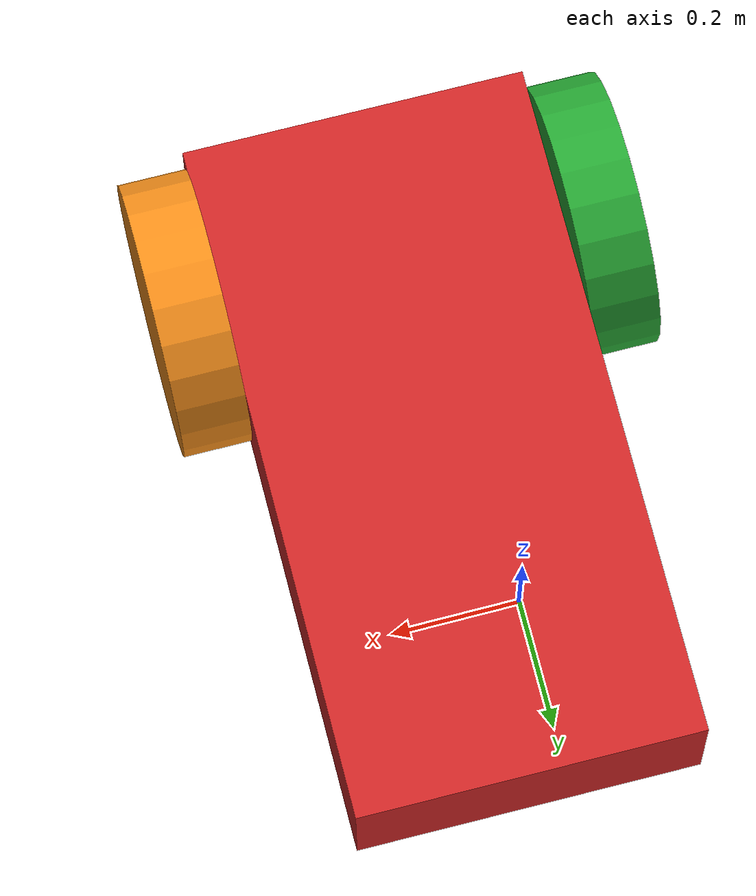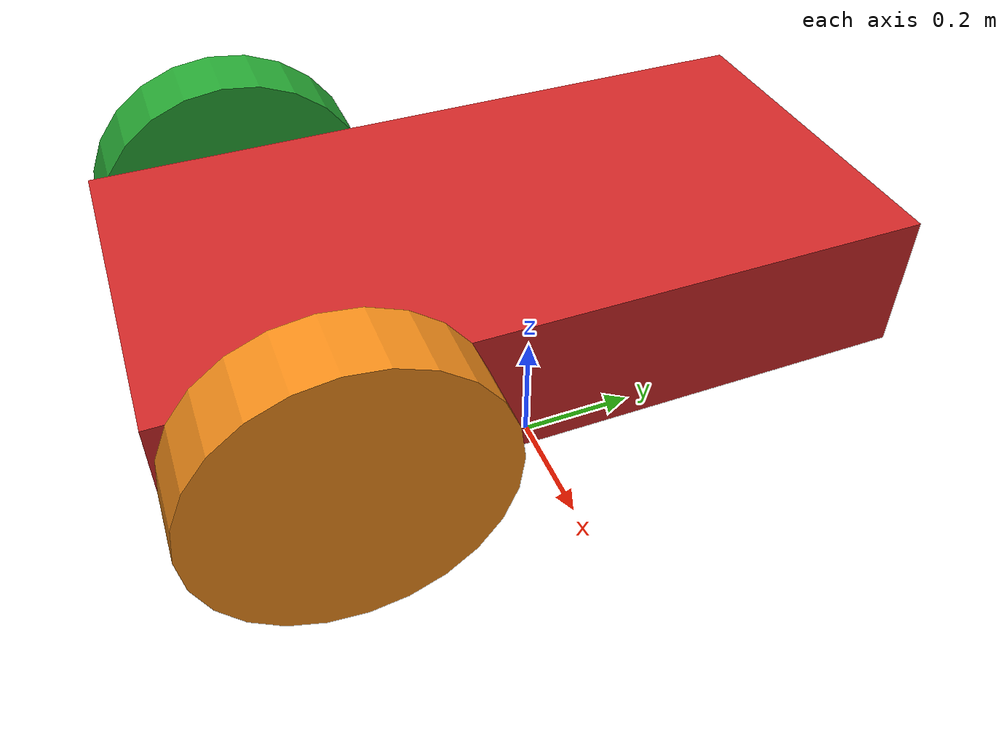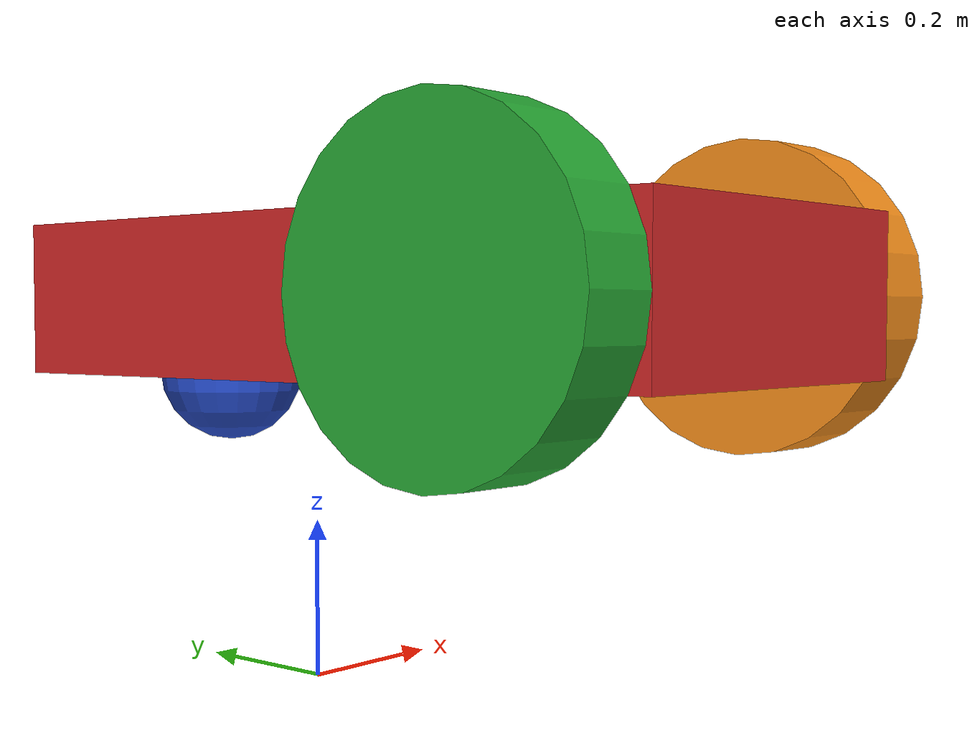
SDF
<?xml version='1.0'?>
<sdf version='1.7'>
  <model name='wagon'>
    <link name='chassis'>
      <inertial>
        <mass>1</mass>
        <inertia>
          <ixx>0.166667</ixx>
          <ixy>0</ixy>
          <ixz>0</ixz>
          <iyy>0.166667</iyy>
          <iyz>0</iyz>
          <izz>0.166667</izz>
        </inertia>
        <pose>0 0 0 0 -0 0</pose>
      </inertial>
      <pose>0.09823 -0.107427 0.483928 0 -0 0</pose>
      <gravity>1</gravity>
      <self_collide>0</self_collide>
      <kinematic>0</kinematic>
      <enable_wind>0</enable_wind>
      <visual name='visual'>
        <pose>0 0 0 0 -0 0</pose>
        <geometry>
          <box>
            <size>0.5 1 0.2</size>
          </box>
        </geometry>
        <material>
          <lighting>1</lighting>
          <script>
            <uri>file://media/materials/scripts/gazebo.material</uri>
            <name>Gazebo/Red</name>
          </script>
          <shader type='pixel'>
            <normal_map>__default__</normal_map>
          </shader>
          <ambient>1 0 0 1</ambient>
          <diffuse>1 0 0 1</diffuse>
          <specular>0.1 0.1 0.1 1</specular>
          <emissive>0 0 0 1</emissive>
        </material>
        <transparency>0</transparency>
        <cast_shadows>1</cast_shadows>
      </visual>
      <collision name='collision'>
        <laser_retro>0</laser_retro>
        <max_contacts>10</max_contacts>
        <pose>0 0 0 0 -0 0</pose>
        <geometry>
          <box>
            <size>0.5 1 0.2</size>
          </box>
        </geometry>
        <surface>
          <friction>
            <ode>
              <mu>1</mu>
              <mu2>1</mu2>
              <fdir1>0 0 0</fdir1>
              <slip1>0</slip1>
              <slip2>0</slip2>
            </ode>
            <torsional>
              <coefficient>1</coefficient>
              <patch_radius>0</patch_radius>
              <surface_radius>0</surface_radius>
              <use_patch_radius>1</use_patch_radius>
              <ode>
                <slip>0</slip>
              </ode>
            </torsional>
          </friction>
          <bounce>
            <restitution_coefficient>0</restitution_coefficient>
            <threshold>1e+06</threshold>
          </bounce>
          <contact>
            <collide_without_contact>0</collide_without_contact>
            <collide_without_contact_bitmask>1</collide_without_contact_bitmask>
            <collide_bitmask>1</collide_bitmask>
            <ode>
              <soft_cfm>0</soft_cfm>
              <soft_erp>0.2</soft_erp>
              <kp>1e+13</kp>
              <kd>1</kd>
              <max_vel>0.01</max_vel>
              <min_depth>0</min_depth>
            </ode>
            <bullet>
              <split_impulse>1</split_impulse>
              <split_impulse_penetration_threshold>-0.01</split_impulse_penetration_threshold>
              <soft_cfm>0</soft_cfm>
              <soft_erp>0.2</soft_erp>
              <kp>1e+13</kp>
              <kd>1</kd>
            </bullet>
          </contact>
        </surface>
      </collision>
    </link>
    <link name='caster'>
      <inertial>
        <mass>1</mass>
        <inertia>
          <ixx>0.1</ixx>
          <ixy>0</ixy>
          <ixz>0</ixz>
          <iyy>0.1</iyy>
          <iyz>0</iyz>
          <izz>0.1</izz>
        </inertia>
        <pose>0 0 0 0 -0 0</pose>
      </inertial>
      <pose>0.07823 0.252573 0.387496 0 -0 0</pose>
      <gravity>1</gravity>
      <self_collide>0</self_collide>
      <kinematic>0</kinematic>
      <enable_wind>0</enable_wind>
      <visual name='visual'>
        <pose>0 0 0 0 -0 0</pose>
        <geometry>
          <sphere>
            <radius>0.1</radius>
          </sphere>
        </geometry>
        <material>
          <lighting>1</lighting>
          <script>
            <uri>file://media/materials/scripts/gazebo.material</uri>
            <name>Gazebo/Blue</name>
          </script>
          <shader type='pixel'>
            <normal_map>__default__</normal_map>
          </shader>
          <ambient>0 0 1 1</ambient>
          <diffuse>0 0 1 1</diffuse>
          <specular>0.1 0.1 0.1 1</specular>
          <emissive>0 0 0 1</emissive>
        </material>
        <transparency>0</transparency>
        <cast_shadows>1</cast_shadows>
      </visual>
      <collision name='collision'>
        <laser_retro>0</laser_retro>
        <max_contacts>10</max_contacts>
        <pose>0 0 0 0 -0 0</pose>
        <geometry>
          <sphere>
            <radius>0.1</radius>
          </sphere>
        </geometry>
        <surface>
          <friction>
            <ode>
              <mu>1</mu>
              <mu2>1</mu2>
              <fdir1>0 0 0</fdir1>
              <slip1>0</slip1>
              <slip2>0</slip2>
            </ode>
            <torsional>
              <coefficient>1</coefficient>
              <patch_radius>0</patch_radius>
              <surface_radius>0</surface_radius>
              <use_patch_radius>1</use_patch_radius>
              <ode>
                <slip>0</slip>
              </ode>
            </torsional>
          </friction>
          <bounce>
            <restitution_coefficient>0</restitution_coefficient>
            <threshold>1e+06</threshold>
          </bounce>
          <contact>
            <collide_without_contact>0</collide_without_contact>
            <collide_without_contact_bitmask>1</collide_without_contact_bitmask>
            <collide_bitmask>1</collide_bitmask>
            <ode>
              <soft_cfm>0</soft_cfm>
              <soft_erp>0.2</soft_erp>
              <kp>1e+13</kp>
              <kd>1</kd>
              <max_vel>0.01</max_vel>
              <min_depth>0</min_depth>
            </ode>
            <bullet>
              <split_impulse>1</split_impulse>
              <split_impulse_penetration_threshold>-0.01</split_impulse_penetration_threshold>
              <soft_cfm>0</soft_cfm>
              <soft_erp>0.2</soft_erp>
              <kp>1e+13</kp>
              <kd>1</kd>
            </bullet>
          </contact>
        </surface>
      </collision>
    </link>
    <link name='right_wheel'>
      <inertial>
        <mass>1</mass>
        <inertia>
          <ixx>0.145833</ixx>
          <ixy>0</ixy>
          <ixz>0</ixz>
          <iyy>0.145833</iyy>
          <iyz>0</iyz>
          <izz>0.125</izz>
        </inertia>
        <pose>0 0 0 0 -0 0</pose>
      </inertial>
      <pose>0.398249 -0.407428 0.483928 0 -0 0</pose>
      <gravity>1</gravity>
      <self_collide>0</self_collide>
      <kinematic>0</kinematic>
      <enable_wind>0</enable_wind>
      <visual name='visual'>
        <pose>0 0 0 0 1.5707 0</pose>
        <geometry>
          <cylinder>
            <radius>0.2</radius>
            <length>0.1</length>
          </cylinder>
        </geometry>
        <material>
          <lighting>1</lighting>
          <script>
            <uri>file://media/materials/scripts/gazebo.material</uri>
            <name>Gazebo/Orange</name>
          </script>
          <shader type='pixel'>
            <normal_map>__default__</normal_map>
          </shader>
          <ambient>1 0.509 0.047 1</ambient>
          <diffuse>1 0.509 0.047 1</diffuse>
          <specular>0.5 0.5 0.5 1</specular>
          <emissive>0 0 0 1</emissive>
        </material>
        <transparency>0</transparency>
        <cast_shadows>1</cast_shadows>
      </visual>
      <collision name='collision'>
        <laser_retro>0</laser_retro>
        <max_contacts>10</max_contacts>
        <pose>0 0 0 0 1.5707 0</pose>
        <geometry>
          <cylinder>
            <radius>0.2</radius>
            <length>0.1</length>
          </cylinder>
        </geometry>
        <surface>
          <friction>
            <ode>
              <mu>1</mu>
              <mu2>1</mu2>
              <fdir1>0 0 0</fdir1>
              <slip1>0</slip1>
              <slip2>0</slip2>
            </ode>
            <torsional>
              <coefficient>1</coefficient>
              <patch_radius>0</patch_radius>
              <surface_radius>0</surface_radius>
              <use_patch_radius>1</use_patch_radius>
              <ode>
                <slip>0</slip>
              </ode>
            </torsional>
          </friction>
          <bounce>
            <restitution_coefficient>0</restitution_coefficient>
            <threshold>1e+06</threshold>
          </bounce>
          <contact>
            <collide_without_contact>0</collide_without_contact>
            <collide_without_contact_bitmask>1</collide_without_contact_bitmask>
            <collide_bitmask>1</collide_bitmask>
            <ode>
              <soft_cfm>0</soft_cfm>
              <soft_erp>0.2</soft_erp>
              <kp>1e+13</kp>
              <kd>1</kd>
              <max_vel>0.01</max_vel>
              <min_depth>0</min_depth>
            </ode>
            <bullet>
              <split_impulse>1</split_impulse>
              <split_impulse_penetration_threshold>-0.01</split_impulse_penetration_threshold>
              <soft_cfm>0</soft_cfm>
              <soft_erp>0.2</soft_erp>
              <kp>1e+13</kp>
              <kd>1</kd>
            </bullet>
          </contact>
        </surface>
      </collision>
    </link>
    <link name='left_wheel'>
      <inertial>
        <mass>1</mass>
        <inertia>
          <ixx>0.145833</ixx>
          <ixy>0</ixy>
          <ixz>0</ixz>
          <iyy>0.145833</iyy>
          <iyz>0</iyz>
          <izz>0.125</izz>
        </inertia>
        <pose>0 0 0 0 -0 0</pose>
      </inertial>
      <pose>-0.20179 -0.407428 0.483928 0 -0 0</pose>
      <gravity>1</gravity>
      <self_collide>0</self_collide>
      <kinematic>0</kinematic>
      <enable_wind>0</enable_wind>
      <visual name='visual'>
        <pose>0 0 0 0 1.5707 0</pose>
        <geometry>
          <cylinder>
            <radius>0.2</radius>
            <length>0.1</length>
          </cylinder>
        </geometry>
        <material>
          <lighting>1</lighting>
          <script>
            <uri>file://media/materials/scripts/gazebo.material</uri>
            <name>Gazebo/Green</name>
          </script>
          <shader type='pixel'>
            <normal_map>__default__</normal_map>
          </shader>
          <ambient>0 1 0 1</ambient>
          <diffuse>0 1 0 1</diffuse>
          <specular>0.1 0.1 0.1 1</specular>
          <emissive>0 0 0 1</emissive>
        </material>
        <transparency>0</transparency>
        <cast_shadows>1</cast_shadows>
      </visual>
      <collision name='collision'>
        <laser_retro>0</laser_retro>
        <max_contacts>10</max_contacts>
        <pose>0 0 0 0 1.5707 0</pose>
        <geometry>
          <cylinder>
            <radius>0.2</radius>
            <length>0.1</length>
          </cylinder>
        </geometry>
        <surface>
          <friction>
            <ode>
              <mu>1</mu>
              <mu2>1</mu2>
              <fdir1>0 0 0</fdir1>
              <slip1>0</slip1>
              <slip2>0</slip2>
            </ode>
            <torsional>
              <coefficient>1</coefficient>
              <patch_radius>0</patch_radius>
              <surface_radius>0</surface_radius>
              <use_patch_radius>1</use_patch_radius>
              <ode>
                <slip>0</slip>
              </ode>
            </torsional>
          </friction>
          <bounce>
            <restitution_coefficient>0</restitution_coefficient>
            <threshold>1e+06</threshold>
          </bounce>
          <contact>
            <collide_without_contact>0</collide_without_contact>
            <collide_without_contact_bitmask>1</collide_without_contact_bitmask>
            <collide_bitmask>1</collide_bitmask>
            <ode>
              <soft_cfm>0</soft_cfm>
              <soft_erp>0.2</soft_erp>
              <kp>1e+13</kp>
              <kd>1</kd>
              <max_vel>0.01</max_vel>
              <min_depth>0</min_depth>
            </ode>
            <bullet>
              <split_impulse>1</split_impulse>
              <split_impulse_penetration_threshold>-0.01</split_impulse_penetration_threshold>
              <soft_cfm>0</soft_cfm>
              <soft_erp>0.2</soft_erp>
              <kp>1e+13</kp>
              <kd>1</kd>
            </bullet>
          </contact>
        </surface>
      </collision>
    </link>
    <joint name='chassis_JOINT_0' type='ball'>
      <parent>chassis</parent>
      <child>caster</child>
      <pose>0 0 0 0 -0 0</pose>
      <physics>
        <ode>
          <limit>
            <cfm>0</cfm>
            <erp>0.2</erp>
          </limit>
          <suspension>
            <cfm>0</cfm>
            <erp>0.2</erp>
          </suspension>
        </ode>
      </physics>
    </joint>
    <joint name='chassis_JOINT_1' type='revolute'>
      <parent>chassis</parent>
      <child>right_wheel</child>
      <pose>0 0 0 0 -0 0</pose>
      <axis>
        <xyz>1 0 0</xyz>
        <limit>
          <lower>-1.79769e+308</lower>
          <upper>1.79769e+308</upper>
          <effort>-1</effort>
          <velocity>-1</velocity>
        </limit>
        <dynamics>
          <spring_reference>0</spring_reference>
          <spring_stiffness>0</spring_stiffness>
          <damping>0</damping>
        </dynamics>
      </axis>
      <physics>
        <ode>
          <limit>
            <cfm>0</cfm>
            <erp>0.2</erp>
          </limit>
          <suspension>
            <cfm>0</cfm>
            <erp>0.2</erp>
          </suspension>
        </ode>
      </physics>
    </joint>
    <joint name='chassis_JOINT_2' type='revolute'>
      <parent>chassis</parent>
      <child>left_wheel</child>
      <pose>0 0 0 0 -0 0</pose>
      <axis>
        <xyz>1 0 0</xyz>
        <limit>
          <lower>-1.79769e+308</lower>
          <upper>1.79769e+308</upper>
          <effort>-1</effort>
          <velocity>-1</velocity>
        </limit>
        <dynamics>
          <spring_reference>0</spring_reference>
          <spring_stiffness>0</spring_stiffness>
          <damping>0</damping>
        </dynamics>
      </axis>
      <physics>
        <ode>
          <limit>
            <cfm>0</cfm>
            <erp>0.2</erp>
          </limit>
          <suspension>
            <cfm>0</cfm>
            <erp>0.2</erp>
          </suspension>
        </ode>
      </physics>
    </joint>
    <static>0</static>
    <allow_auto_disable>1</allow_auto_disable>
  </model>
</sdf>
